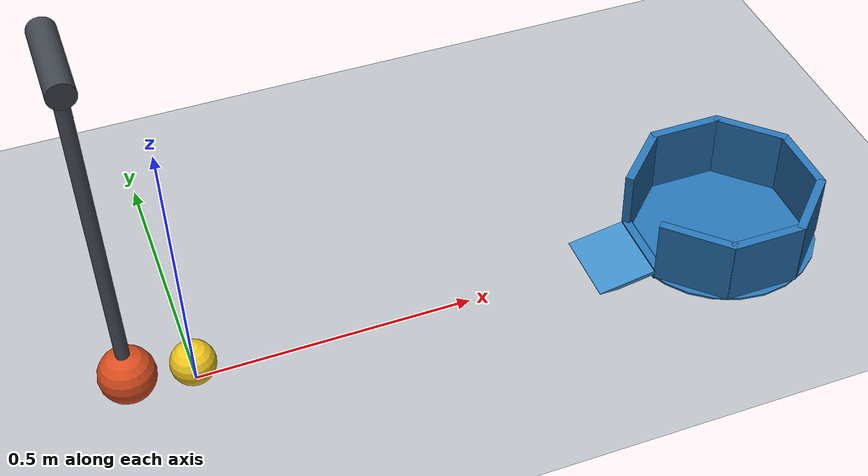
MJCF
<mujoco model="pendulum_ball_cup">
  <compiler angle="radian" inertiafromgeom="true"/>
  <option timestep="0.002" gravity="0 0 -9.81" integrator="implicitfast" solver="Newton" iterations="80"/>
  <statistic center="0.35 0 0.3" extent="1.35"/>

  <worldbody>
    <light name="main_light" pos="0.3 -1.5 3" dir="0 0.4 -1" directional="true"/>
    <geom name="floor" type="plane" size="3 2 0.1" friction="0.65 0.005 0.00015" condim="6" solref="0.008 1" solimp="0.95 0.99 0.001" rgba="0.72 0.74 0.76 1"/>

    <body name="anchor" pos="-0.11 0 0.705">
      <geom name="anchor_axle" type="cylinder" size="0.022 0.08" quat="0.7071068 0.7071068 0 0" contype="0" conaffinity="0" rgba="0.25 0.27 0.30 1"/>
    </body>

    <!-- Gravity releases the pendulum from its keyframe angle. -->
    <body name="pendulum" pos="-0.11 0 0.705">
      <joint name="pendulum_hinge" type="hinge" axis="0 1 0" limited="true" range="-0.65 0.65" damping="0.003" armature="0.00005"/>
      <geom name="pendulum_rod" type="capsule" fromto="0 0 0 0 0 -0.60" size="0.012" mass="0.04" friction="0.35 0.005 0.0001" rgba="0.30 0.33 0.37 1"/>
      <geom name="pendulum_bob" type="sphere" pos="0 0 -0.65" size="0.05" mass="0.30" friction="0.35 0.005 0.0001" solref="0.008 1" solimp="0.95 0.99 0.001" rgba="0.85 0.30 0.12 1"/>
    </body>

    <body name="ball" pos="0 0 0.04">
      <freejoint name="ball_free"/>
      <geom name="ball" type="sphere" size="0.04" mass="0.05" friction="0.65 0.005 0.00015" condim="6" solref="0.008 1" solimp="0.95 0.99 0.001" rgba="0.95 0.78 0.12 1"/>
    </body>

    <!-- Cup centre is exactly 1 m from the ball's initial centre in x-y. -->
    <!-- The shallow entry ramp crosses a low lip; the other seven walls retain the ball. -->
    <body name="cup" pos="1 0 0">
      <geom name="cup_base" type="cylinder" pos="0 0 0.002" size="0.18 0.002" friction="0.8 0.01 0.001" condim="6" solref="0.008 1" rgba="0.15 0.45 0.70 1"/>
      <geom name="cup_wall_east" type="box" pos="0.16 0 0.067" size="0.008 0.070 0.063" friction="0.8 0.01 0.001" condim="6" solref="0.008 1" rgba="0.15 0.45 0.70 1"/>
      <geom name="cup_wall_northeast" type="box" pos="0.113137 0.113137 0.067" quat="0.9238795 0 0 0.3826834" size="0.008 0.070 0.063" friction="0.8 0.01 0.001" condim="6" solref="0.008 1" rgba="0.15 0.45 0.70 1"/>
      <geom name="cup_wall_north" type="box" pos="0 0.16 0.067" quat="0.7071068 0 0 0.7071068" size="0.008 0.070 0.063" friction="0.8 0.01 0.001" condim="6" solref="0.008 1" rgba="0.15 0.45 0.70 1"/>
      <geom name="cup_wall_northwest" type="box" pos="-0.113137 0.113137 0.067" quat="0.3826834 0 0 0.9238795" size="0.008 0.070 0.063" friction="0.8 0.01 0.001" condim="6" solref="0.008 1" rgba="0.15 0.45 0.70 1"/>
      <geom name="cup_entry_lip" type="box" pos="-0.16 0 0.011" size="0.008 0.070 0.011" friction="0.8 0.01 0.001" condim="6" solref="0.008 1" rgba="0.15 0.45 0.70 1"/>
      <geom name="cup_wall_southwest" type="box" pos="-0.113137 -0.113137 0.067" quat="0.3826834 0 0 -0.9238795" size="0.008 0.070 0.063" friction="0.8 0.01 0.001" condim="6" solref="0.008 1" rgba="0.15 0.45 0.70 1"/>
      <geom name="cup_wall_south" type="box" pos="0 -0.16 0.067" quat="0.7071068 0 0 -0.7071068" size="0.008 0.070 0.063" friction="0.8 0.01 0.001" condim="6" solref="0.008 1" rgba="0.15 0.45 0.70 1"/>
      <geom name="cup_wall_southeast" type="box" pos="0.113137 -0.113137 0.067" quat="0.9238795 0 0 -0.3826834" size="0.008 0.070 0.063" friction="0.8 0.01 0.001" condim="6" solref="0.008 1" rgba="0.15 0.45 0.70 1"/>
      <geom name="cup_entry_ramp" type="box" pos="-0.212301 0 0.007062" quat="0.9961483 0 -0.087685 0" size="0.062969 0.070 0.004" friction="0.8 0.005 0.00015" condim="6" solref="0.008 1" rgba="0.24 0.55 0.78 1"/>
    </body>
  </worldbody>

  <keyframe>
    <key name="start" qpos="0.5 0 0 0.04 1 0 0 0" qvel="0 0 0 0 0 0 0"/>
  </keyframe>
</mujoco>
